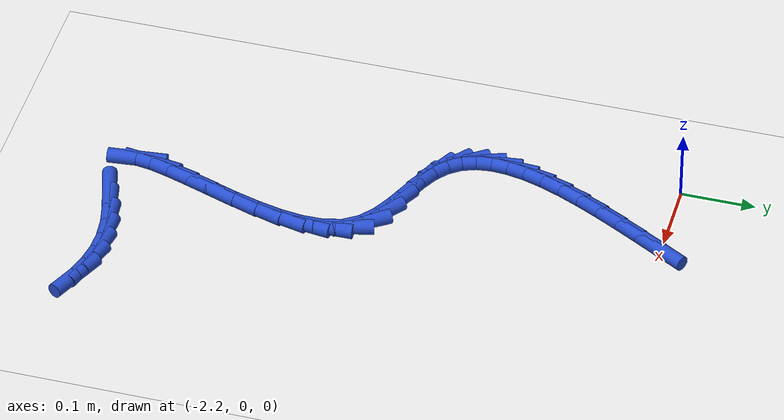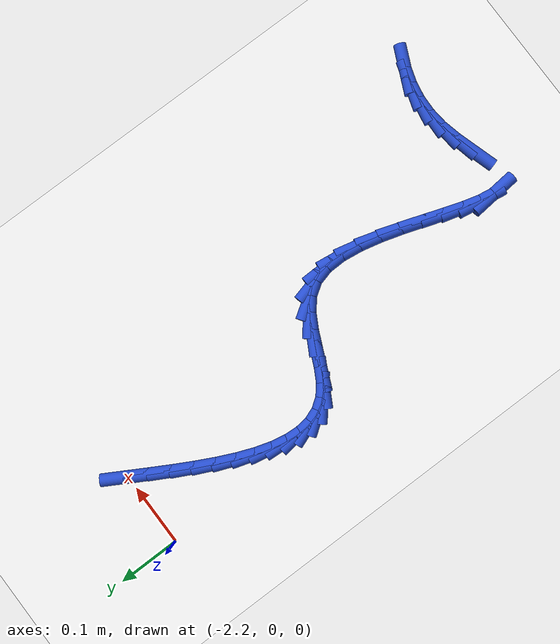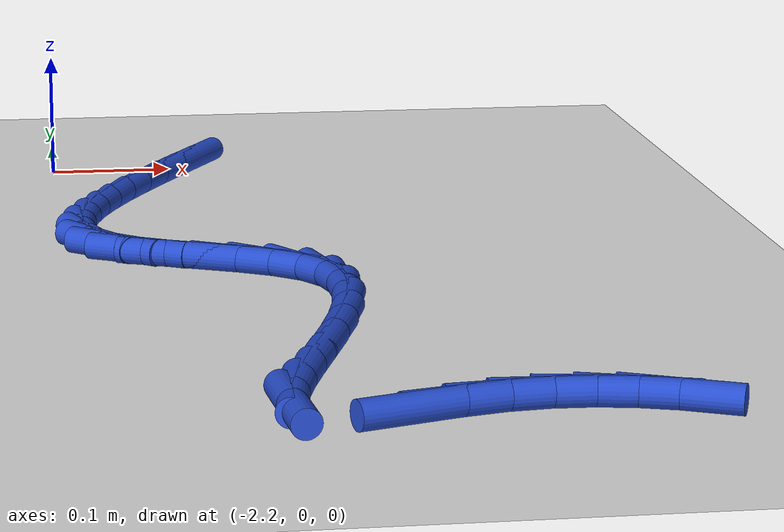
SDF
<sdf version="1.6">
 <world name="default">
  <model name="ground_plane">
   <static>1</static>
   <link name="link">
    <collision name="collision">
     <geometry><plane><normal>0 0 1</normal><size>100 100</size></plane></geometry>
     <surface><friction><ode><mu>100</mu><mu2>50</mu2></ode></friction></surface>
    </collision>
    <visual name="visual">
     <cast_shadows>0</cast_shadows>
     <geometry><plane><normal>0 0 1</normal><size>100 100</size></plane></geometry>
     <material>
      <script><uri>file://media/materials/scripts/gazebo.material</uri><name>Gazebo/WhiteGlow</name></script>
     </material>
    </visual>
   </link>
  </model>
  <model name="line">
   <link name="link_145">
    <pose>-2.0780994279616554 -0.0007603906568999785 0.01 0 1.57 1.0519002824080954</pose>
    <collision name="collision">
     <geometry><cylinder><radius>0.01</radius><length>0.08</length></cylinder></geometry>
    </collision>
    <visual name="visual">
     <material>
      <script><name>Gazebo/Blue</name><uri>file://media/materials/scripts/gazebo.material</uri></script>
     </material>
     <geometry><cylinder><radius>0.01</radius><length>0.08</length></cylinder></geometry>
    </visual>
   </link>
   <link name="link_146">
    <pose>-2.0957745884806447 -0.031709885778248334 0.01 0 1.57 1.0596802137056813</pose>
    <collision name="collision">
     <geometry><cylinder><radius>0.01</radius><length>0.08</length></cylinder></geometry>
    </collision>
    <visual name="visual">
     <material>
      <script><name>Gazebo/Blue</name><uri>file://media/materials/scripts/gazebo.material</uri></script>
     </material>
     <geometry><cylinder><radius>0.01</radius><length>0.08</length></cylinder></geometry>
    </visual>
   </link>
   <link name="link_147">
    <pose>-2.1129387466364147 -0.06231508255714098 0.01 0 1.57 1.0762346725704637</pose>
    <collision name="collision">
     <geometry><cylinder><radius>0.01</radius><length>0.08</length></cylinder></geometry>
    </collision>
    <visual name="visual">
     <material>
      <script><name>Gazebo/Blue</name><uri>file://media/materials/scripts/gazebo.material</uri></script>
     </material>
     <geometry><cylinder><radius>0.01</radius><length>0.08</length></cylinder></geometry>
    </visual>
   </link>
   <link name="link_148">
    <pose>-2.129155717006958 -0.09238761178779302 0.01 0 1.57 1.1028556176612208</pose>
    <collision name="collision">
     <geometry><cylinder><radius>0.01</radius><length>0.08</length></cylinder></geometry>
    </collision>
    <visual name="visual">
     <material>
      <script><name>Gazebo/Blue</name><uri>file://media/materials/scripts/gazebo.material</uri></script>
     </material>
     <geometry><cylinder><radius>0.01</radius><length>0.08</length></cylinder></geometry>
    </visual>
   </link>
   <link name="link_149">
    <pose>-2.1439893141702684 -0.12173910426441942 0.01 0 1.57 1.1416710656324875</pose>
    <collision name="collision">
     <geometry><cylinder><radius>0.01</radius><length>0.08</length></cylinder></geometry>
    </collision>
    <visual name="visual">
     <material>
      <script><name>Gazebo/Blue</name><uri>file://media/materials/scripts/gazebo.material</uri></script>
     </material>
     <geometry><cylinder><radius>0.01</radius><length>0.08</length></cylinder></geometry>
    </visual>
   </link>
   <link name="link_150">
    <pose>-2.1570033527043373 -0.15018119078123532 0.01 0 1.57 1.1959595097723708</pose>
    <collision name="collision">
     <geometry><cylinder><radius>0.01</radius><length>0.08</length></cylinder></geometry>
    </collision>
    <visual name="visual">
     <material>
      <script><name>Gazebo/Blue</name><uri>file://media/materials/scripts/gazebo.material</uri></script>
     </material>
     <geometry><cylinder><radius>0.01</radius><length>0.08</length></cylinder></geometry>
    </visual>
   </link>
   <link name="link_151">
    <pose>-2.1677616471871586 -0.17752550213245583 0.01 0 1.57 1.270599174547054</pose>
    <collision name="collision">
     <geometry><cylinder><radius>0.01</radius><length>0.08</length></cylinder></geometry>
    </collision>
    <visual name="visual">
     <material>
      <script><name>Gazebo/Blue</name><uri>file://media/materials/scripts/gazebo.material</uri></script>
     </material>
     <geometry><cylinder><radius>0.01</radius><length>0.08</length></cylinder></geometry>
    </visual>
   </link>
   <link name="link_152">
    <pose>-2.1758280121967255 -0.20358366911229514 0.01 0 1.57 1.3725592209224187</pose>
    <collision name="collision">
     <geometry><cylinder><radius>0.01</radius><length>0.08</length></cylinder></geometry>
    </collision>
    <visual name="visual">
     <material>
      <script><name>Gazebo/Blue</name><uri>file://media/materials/scripts/gazebo.material</uri></script>
     </material>
     <geometry><cylinder><radius>0.01</radius><length>0.08</length></cylinder></geometry>
    </visual>
   </link>
   <link name="link_153">
    <pose>-2.180766262311031 -0.22816732251497 0.01 0 1.57 1.5109245307766654</pose>
    <collision name="collision">
     <geometry><cylinder><radius>0.01</radius><length>0.08</length></cylinder></geometry>
    </collision>
    <visual name="visual">
     <material>
      <script><name>Gazebo/Blue</name><uri>file://media/materials/scripts/gazebo.material</uri></script>
     </material>
     <geometry><cylinder><radius>0.01</radius><length>0.08</length></cylinder></geometry>
    </visual>
   </link>
   <link name="link_154">
    <pose>-2.1821402121080666 -0.2510880931346946 0.01 0 1.57 -1.446775659817204</pose>
    <collision name="collision">
     <geometry><cylinder><radius>0.01</radius><length>0.08</length></cylinder></geometry>
    </collision>
    <visual name="visual">
     <material>
      <script><name>Gazebo/Blue</name><uri>file://media/materials/scripts/gazebo.material</uri></script>
     </material>
     <geometry><cylinder><radius>0.01</radius><length>0.08</length></cylinder></geometry>
    </visual>
   </link>
   <link name="link_155">
    <pose>-2.179513676165827 -0.2721576117656841 0.01 0 1.57 -1.2153932244874361</pose>
    <collision name="collision">
     <geometry><cylinder><radius>0.01</radius><length>0.08</length></cylinder></geometry>
    </collision>
    <visual name="visual">
     <material>
      <script><name>Gazebo/Blue</name><uri>file://media/materials/scripts/gazebo.material</uri></script>
     </material>
     <geometry><cylinder><radius>0.01</radius><length>0.08</length></cylinder></geometry>
    </visual>
   </link>
   <link name="link_156">
    <pose>-2.172450469062303 -0.2911875092021535 0.01 0 1.57 -0.9531249834291169</pose>
    <collision name="collision">
     <geometry><cylinder><radius>0.01</radius><length>0.08</length></cylinder></geometry>
    </collision>
    <visual name="visual">
     <material>
      <script><name>Gazebo/Blue</name><uri>file://media/materials/scripts/gazebo.material</uri></script>
     </material>
     <geometry><cylinder><radius>0.01</radius><length>0.08</length></cylinder></geometry>
    </visual>
   </link>
   <link name="link_157">
    <pose>-2.1605144053754897 -0.3079894162383178 0.01 0 1.57 -0.695431072580931</pose>
    <collision name="collision">
     <geometry><cylinder><radius>0.01</radius><length>0.08</length></cylinder></geometry>
    </collision>
    <visual name="visual">
     <material>
      <script><name>Gazebo/Blue</name><uri>file://media/materials/scripts/gazebo.material</uri></script>
     </material>
     <geometry><cylinder><radius>0.01</radius><length>0.08</length></cylinder></geometry>
    </visual>
   </link>
   <link name="link_158">
    <pose>-2.143273349108061 -0.3223772141845192 0.01 0 1.57 -0.503411154206614</pose>
    <collision name="collision">
     <geometry><cylinder><radius>0.01</radius><length>0.08</length></cylinder></geometry>
    </collision>
    <visual name="visual">
     <material>
      <script><name>Gazebo/Blue</name><uri>file://media/materials/scripts/gazebo.material</uri></script>
     </material>
     <geometry><cylinder><radius>0.01</radius><length>0.08</length></cylinder></geometry>
    </visual>
   </link>
   <link name="link_159">
    <pose>-2.1210791076243254 -0.3346004702364828 0.01 0 1.57 -0.42198987859901815</pose>
    <collision name="collision">
     <geometry><cylinder><radius>0.01</radius><length>0.08</length></cylinder></geometry>
    </collision>
    <visual name="visual">
     <material>
      <script><name>Gazebo/Blue</name><uri>file://media/materials/scripts/gazebo.material</uri></script>
     </material>
     <geometry><cylinder><radius>0.01</radius><length>0.08</length></cylinder></geometry>
    </visual>
   </link>
   <link name="link_160">
    <pose>-2.0959973103966876 -0.34586122869363733 0.01 0 1.57 -0.425165814520984</pose>
    <collision name="collision">
     <geometry><cylinder><radius>0.01</radius><length>0.08</length></cylinder></geometry>
    </collision>
    <visual name="visual">
     <material>
      <script><name>Gazebo/Blue</name><uri>file://media/materials/scripts/gazebo.material</uri></script>
     </material>
     <geometry><cylinder><radius>0.01</radius><length>0.08</length></cylinder></geometry>
    </visual>
   </link>
   <link name="link_161">
    <pose>-2.0703201103559548 -0.35748742697264874 0.01 0 1.57 -0.5070061958470486</pose>
    <collision name="collision">
     <geometry><cylinder><radius>0.01</radius><length>0.08</length></cylinder></geometry>
    </collision>
    <visual name="visual">
     <material>
      <script><name>Gazebo/Blue</name><uri>file://media/materials/scripts/gazebo.material</uri></script>
     </material>
     <geometry><cylinder><radius>0.01</radius><length>0.08</length></cylinder></geometry>
    </visual>
   </link>
   <link name="link_162">
    <pose>-2.046339660432932 -0.3708070024901832 0.01 0 1.57 -0.6852550100693982</pose>
    <collision name="collision">
     <geometry><cylinder><radius>0.01</radius><length>0.08</length></cylinder></geometry>
    </collision>
    <visual name="visual">
     <material>
      <script><name>Gazebo/Blue</name><uri>file://media/materials/scripts/gazebo.material</uri></script>
     </material>
     <geometry><cylinder><radius>0.01</radius><length>0.08</length></cylinder></geometry>
    </visual>
   </link>
   <link name="link_163">
    <pose>-2.0263481135584276 -0.3871478926629069 0.01 0 1.57 -0.9841257776537391</pose>
    <collision name="collision">
     <geometry><cylinder><radius>0.01</radius><length>0.08</length></cylinder></geometry>
    </collision>
    <visual name="visual">
     <material>
      <script><name>Gazebo/Blue</name><uri>file://media/materials/scripts/gazebo.material</uri></script>
     </material>
     <geometry><cylinder><radius>0.01</radius><length>0.08</length></cylinder></geometry>
    </visual>
   </link>
   <link name="link_164">
    <pose>-2.012607785379308 -0.40781798836963645 0.01 0 1.57 -1.3156411696924337</pose>
    <collision name="collision">
     <geometry><cylinder><radius>0.01</radius><length>0.08</length></cylinder></geometry>
    </collision>
    <visual name="visual">
     <material>
      <script><name>Gazebo/Blue</name><uri>file://media/materials/scripts/gazebo.material</uri></script>
     </material>
     <geometry><cylinder><radius>0.01</radius><length>0.08</length></cylinder></geometry>
    </visual>
   </link>
   <link name="link_165">
    <pose>-2.0059896378726068 -0.43319038280244937 0.01 0 1.57 -1.5509251554537253</pose>
    <collision name="collision">
     <geometry><cylinder><radius>0.01</radius><length>0.08</length></cylinder></geometry>
    </collision>
    <visual name="visual">
     <material>
      <script><name>Gazebo/Blue</name><uri>file://media/materials/scripts/gazebo.material</uri></script>
     </material>
     <geometry><cylinder><radius>0.01</radius><length>0.08</length></cylinder></geometry>
    </visual>
   </link>
   <link name="link_166">
    <pose>-2.005410615946508 -0.4623253392990065 0.01 0 1.57 1.4387790930468387</pose>
    <collision name="collision">
     <geometry><cylinder><radius>0.01</radius><length>0.08</length></cylinder></geometry>
    </collision>
    <visual name="visual">
     <material>
      <script><name>Gazebo/Blue</name><uri>file://media/materials/scripts/gazebo.material</uri></script>
     </material>
     <geometry><cylinder><radius>0.01</radius><length>0.08</length></cylinder></geometry>
    </visual>
   </link>
   <link name="link_167">
    <pose>-2.0096412101009116 -0.4941847240424256 0.01 0 1.57 1.3420344320186748</pose>
    <collision name="collision">
     <geometry><cylinder><radius>0.01</radius><length>0.08</length></cylinder></geometry>
    </collision>
    <visual name="visual">
     <material>
      <script><name>Gazebo/Blue</name><uri>file://media/materials/scripts/gazebo.material</uri></script>
     </material>
     <geometry><cylinder><radius>0.01</radius><length>0.08</length></cylinder></geometry>
    </visual>
   </link>
   <link name="link_168">
    <pose>-2.0174519108357196 -0.5277304032158252 0.01 0 1.57 1.2819401796129097</pose>
    <collision name="collision">
     <geometry><cylinder><radius>0.01</radius><length>0.08</length></cylinder></geometry>
    </collision>
    <visual name="visual">
     <material>
      <script><name>Gazebo/Blue</name><uri>file://media/materials/scripts/gazebo.material</uri></script>
     </material>
     <geometry><cylinder><radius>0.01</radius><length>0.08</length></cylinder></geometry>
    </visual>
   </link>
   <link name="link_169">
    <pose>-2.027613208650833 -0.5619242430023222 0.01 0 1.57 1.248661638311008</pose>
    <collision name="collision">
     <geometry><cylinder><radius>0.01</radius><length>0.08</length></cylinder></geometry>
    </collision>
    <visual name="visual">
     <material>
      <script><name>Gazebo/Blue</name><uri>file://media/materials/scripts/gazebo.material</uri></script>
     </material>
     <geometry><cylinder><radius>0.01</radius><length>0.08</length></cylinder></geometry>
    </visual>
   </link>
   <link name="link_170">
    <pose>-2.038895594046155 -0.5957281095850374 0.01 0 1.57 1.2384633630280482</pose>
    <collision name="collision">
     <geometry><cylinder><radius>0.01</radius><length>0.08</length></cylinder></geometry>
    </collision>
    <visual name="visual">
     <material>
      <script><name>Gazebo/Blue</name><uri>file://media/materials/scripts/gazebo.material</uri></script>
     </material>
     <geometry><cylinder><radius>0.01</radius><length>0.08</length></cylinder></geometry>
    </visual>
   </link>
   <link name="link_171">
    <pose>-2.050069557521586 -0.6281038691470876 0.01 0 1.57 1.2530775309809332</pose>
    <collision name="collision">
     <geometry><cylinder><radius>0.01</radius><length>0.08</length></cylinder></geometry>
    </collision>
    <visual name="visual">
     <material>
      <script><name>Gazebo/Blue</name><uri>file://media/materials/scripts/gazebo.material</uri></script>
     </material>
     <geometry><cylinder><radius>0.01</radius><length>0.08</length></cylinder></geometry>
    </visual>
   </link>
   <link name="link_172">
    <pose>-2.059905589577028 -0.6580133878715912 0.01 0 1.57 1.302177457310806</pose>
    <collision name="collision">
     <geometry><cylinder><radius>0.01</radius><length>0.08</length></cylinder></geometry>
    </collision>
    <visual name="visual">
     <material>
      <script><name>Gazebo/Blue</name><uri>file://media/materials/scripts/gazebo.material</uri></script>
     </material>
     <geometry><cylinder><radius>0.01</radius><length>0.08</length></cylinder></geometry>
    </visual>
   </link>
   <link name="link_173">
    <pose>-2.067174180712382 -0.6844185319416665 0.01 0 1.57 1.4133178356407026</pose>
    <collision name="collision">
     <geometry><cylinder><radius>0.01</radius><length>0.08</length></cylinder></geometry>
    </collision>
    <visual name="visual">
     <material>
      <script><name>Gazebo/Blue</name><uri>file://media/materials/scripts/gazebo.material</uri></script>
     </material>
     <geometry><cylinder><radius>0.01</radius><length>0.08</length></cylinder></geometry>
    </visual>
   </link>
   <link name="link_174">
    <pose>-2.0706458214275503 -0.7062811675404316 0.01 0 1.57 -1.4755918415465612</pose>
    <collision name="collision">
     <geometry><cylinder><radius>0.01</radius><length>0.08</length></cylinder></geometry>
    </collision>
    <visual name="visual">
     <material>
      <script><name>Gazebo/Blue</name><uri>file://media/materials/scripts/gazebo.material</uri></script>
     </material>
     <geometry><cylinder><radius>0.01</radius><length>0.08</length></cylinder></geometry>
    </visual>
   </link>
   <link name="link_179">
    <pose>-1.9973171043011806 -0.7217332335843076 0.01 0 1.57 0.29752014297873963</pose>
    <collision name="collision">
     <geometry><cylinder><radius>0.01</radius><length>0.08</length></cylinder></geometry>
    </collision>
    <visual name="visual">
     <material>
      <script><name>Gazebo/Blue</name><uri>file://media/materials/scripts/gazebo.material</uri></script>
     </material>
     <geometry><cylinder><radius>0.01</radius><length>0.08</length></cylinder></geometry>
    </visual>
   </link>
   <link name="link_180">
    <pose>-1.9681944479330764 -0.7128036104709309 0.01 0 1.57 0.22810197301449978</pose>
    <collision name="collision">
     <geometry><cylinder><radius>0.01</radius><length>0.08</length></cylinder></geometry>
    </collision>
    <visual name="visual">
     <material>
      <script><name>Gazebo/Blue</name><uri>file://media/materials/scripts/gazebo.material</uri></script>
     </material>
     <geometry><cylinder><radius>0.01</radius><length>0.08</length></cylinder></geometry>
    </visual>
   </link>
   <link name="link_181">
    <pose>-1.9388830247891216 -0.7059991931971878 0.01 0 1.57 0.10115343319627006</pose>
    <collision name="collision">
     <geometry><cylinder><radius>0.01</radius><length>0.08</length></cylinder></geometry>
    </collision>
    <visual name="visual">
     <material>
      <script><name>Gazebo/Blue</name><uri>file://media/materials/scripts/gazebo.material</uri></script>
     </material>
     <geometry><cylinder><radius>0.01</radius><length>0.08</length></cylinder></geometry>
    </visual>
   </link>
   <link name="link_182">
    <pose>-1.910833736648069 -0.703152194593484 0.01 0 1.57 -0.037683189469360855</pose>
    <collision name="collision">
     <geometry><cylinder><radius>0.01</radius><length>0.08</length></cylinder></geometry>
    </collision>
    <visual name="visual">
     <material>
      <script><name>Gazebo/Blue</name><uri>file://media/materials/scripts/gazebo.material</uri></script>
     </material>
     <geometry><cylinder><radius>0.01</radius><length>0.08</length></cylinder></geometry>
    </visual>
   </link>
   <link name="link_183">
    <pose>-1.8840952015895918 -0.7041602650824194 0.01 0 1.57 -0.17672124564212463</pose>
    <collision name="collision">
     <geometry><cylinder><radius>0.01</radius><length>0.08</length></cylinder></geometry>
    </collision>
    <visual name="visual">
     <material>
      <script><name>Gazebo/Blue</name><uri>file://media/materials/scripts/gazebo.material</uri></script>
     </material>
     <geometry><cylinder><radius>0.01</radius><length>0.08</length></cylinder></geometry>
    </visual>
   </link>
   <link name="link_184">
    <pose>-1.8585694087313118 -0.7087187687175325 0.01 0 1.57 -0.30943392640040274</pose>
    <collision name="collision">
     <geometry><cylinder><radius>0.01</radius><length>0.08</length></cylinder></geometry>
    </collision>
    <visual name="visual">
     <material>
      <script><name>Gazebo/Blue</name><uri>file://media/materials/scripts/gazebo.material</uri></script>
     </material>
     <geometry><cylinder><radius>0.01</radius><length>0.08</length></cylinder></geometry>
    </visual>
   </link>
   <link name="link_185">
    <pose>-1.8341583471908485 -0.7165230695523616 0.01 0 1.57 -0.43057641316452117</pose>
    <collision name="collision">
     <geometry><cylinder><radius>0.01</radius><length>0.08</length></cylinder></geometry>
    </collision>
    <visual name="visual">
     <material>
      <script><name>Gazebo/Blue</name><uri>file://media/materials/scripts/gazebo.material</uri></script>
     </material>
     <geometry><cylinder><radius>0.01</radius><length>0.08</length></cylinder></geometry>
    </visual>
   </link>
  </model>
 </world>
</sdf>
